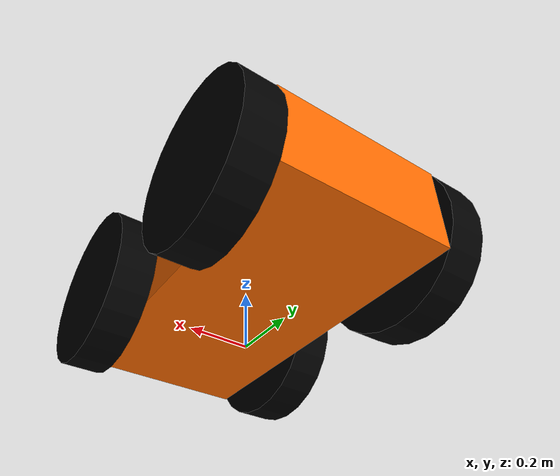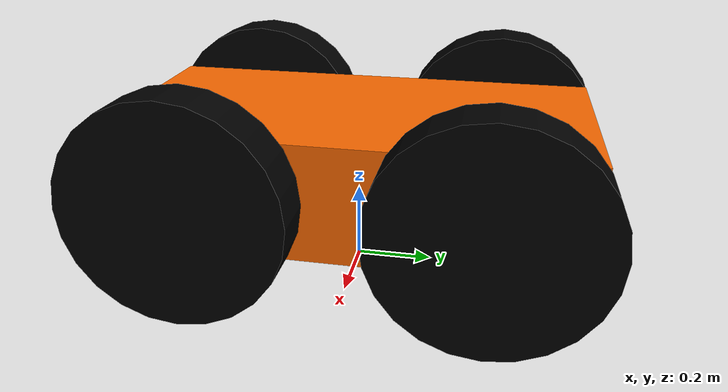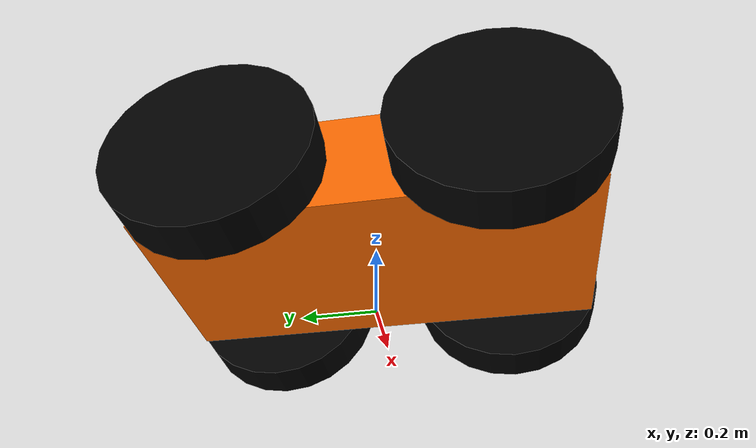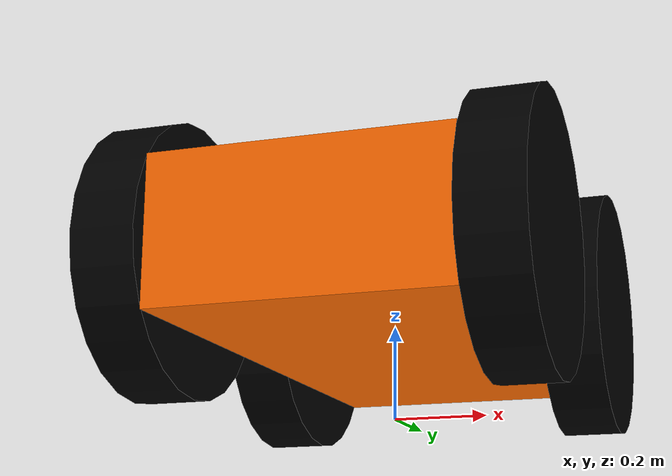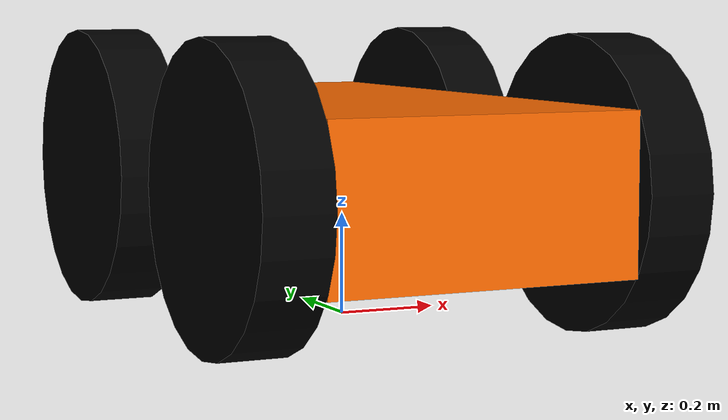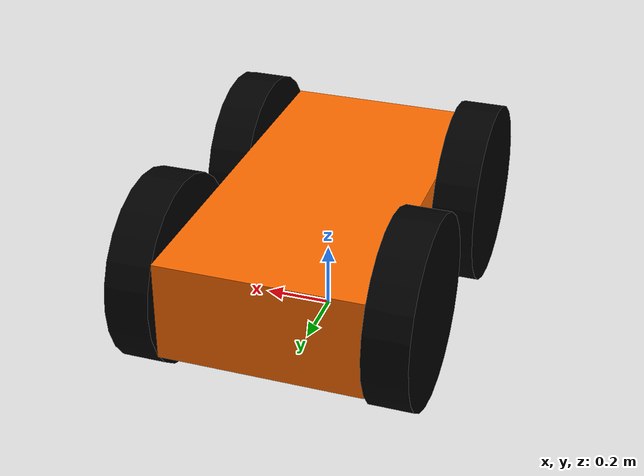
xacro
<?xml version="1.0"?>
<robot name="new_car"
    xmlns:xacro="http://www.ros.org/wiki/xacro">
    <!--定义变量及常数-->
    <xacro:property name="PI" value="3.1415926"/>

    <xacro:property name="car_width" value="0.6"/>
    <xacro:property name="car_length" value="1.2"/>
    <xacro:property name="car_height" value="0.3"/>

    <xacro:property name="wheel_length" value="0.13"/>
    <xacro:property name="wheel_radius" value="0.28"/>

    <xacro:property name="wheel_origin_xyz" value="0.0 0.0 0.0"/>
    <xacro:property name="wheel_origin_rpy" value="0.0 ${PI/2} 0.0"/>

    <!--定义材质-->
    <material name="yellow">
        <color rgba="0.996 0.416 0.0 1.0"/>
    </material>

    <material name="black">
        <color rgba="0.0 0.0 0.0 1.0"/>
    </material>

    <!--宏定义-->

    <xacro:macro name="default_origin" params="xyz rpyaw">
        <origin xyz="${xyz}" rpy="${rpyaw}"/>
    </xacro:macro>
    <xacro:macro name="default_inertial" params="mass">
        <inertial>
            <mass value="${mass}" />
            <inertia ixx="1.0" ixy="0.0" ixz="0.0" iyy="1.0" iyz="0.0" izz="1.0" />
        </inertial>
    </xacro:macro>
    <xacro:macro name="cylinder_geometry" params="length radius">
        <geometry>
            <cylinder length="${length}" radius="${radius}"/>
        </geometry>
    </xacro:macro>
    <xacro:macro name="box_geometry" params="width length height">
        <geometry>
            <box size="${width} ${length} ${height}"/>
        </geometry>
    </xacro:macro>

<!--车身link-->
    <link name="car_link">
        <visual>
            <xacro:box_geometry width="${car_width}" length="${car_length}" height="${car_height}"/>
            <material name="yellow"/>
        </visual>
        <collision>
            <xacro:box_geometry width="${car_width}" length="${car_length}" height="${car_height}"/>
        </collision>
        <xacro:default_inertial mass="3.0"/>

    </link>

    <gazebo reference="car_link">
        <material>Gazebo/SkyBlue</material>
        <mu1>10000</mu1>
        <mu2>10000</mu2>
    </gazebo>

    <xacro:macro name="wheel_car_joint" params="wheel_name front_back left_right">
        <link name="${wheel_name}">
            <visual>
                <xacro:cylinder_geometry length="${wheel_length}" radius="${wheel_radius}"/>
                <xacro:default_origin xyz="${wheel_origin_xyz}" rpyaw="${wheel_origin_rpy}" />
                <material name="black"/>
            </visual>
            <collision>
                <xacro:cylinder_geometry length="${wheel_length}" radius="${wheel_radius}"/>
                <xacro:default_origin xyz="${wheel_origin_xyz}" rpyaw="${wheel_origin_rpy}" />
            </collision>
            <xacro:default_inertial mass="1.0"/>
        </link>

        <joint name="car_base_${wheel_name}" type="continuous">
            <origin xyz="${left_right*(wheel_length+car_width)/2.0} ${front_back*car_length*0.6/2.0} 0.0" rpy="0.0 0.0 0.0"/>
            <!--利用left_right和front_back正负决定位置-->
            <parent link="car_link"/>
            <child link="${wheel_name}"/>
            <axis xyz="1.0 0.0 0.0"/>
        </joint>

        <gazebo reference="${wheel_name}">
            <material>Gazebo/Black</material>
            <mu1>100000</mu1>            <!--静摩擦-->
            <mu2>100000</mu2>            <!--动摩擦-->
        </gazebo>
<!--传动-->
        <transmission name="${wheel_name}_transmission">
            <type>transmission_interface/SimpleTransmission</type>
            <joint name="car_base_${wheel_name}">
                <hardwareInterface>hardware_interface/VelocityJointInterface</hardwareInterface>
            </joint>
            <actuator name="${wheel_name}_motor">
                <mechanicalReducction>1</mechanicalReducction><!--传动比定为1-->
            </actuator>
        </transmission>
    </xacro:macro>

    <xacro:wheel_car_joint wheel_name="front_right_wheel" front_back="1.0" left_right="1.0"/>
    <xacro:wheel_car_joint wheel_name="front_left_wheel" front_back="1.0" left_right="-1.0"/>
    <xacro:wheel_car_joint wheel_name="back_right_wheel" front_back="-1.0" left_right="1.0"/>
    <xacro:wheel_car_joint wheel_name="back_left_wheel" front_back="-1.0" left_right="-1.0"/>

    <link name="base_link"/>
    <joint name="base_link_car" type="fixed">
        <origin xyz="0.0 0.0 ${wheel_radius}" rpy="0.0 0.0 0.0"/>
        <parent link="base_link"/>
        <child link="car_link"/>
    </joint>
<gazebo>
    <plugin name="gazebo_ros_control" filename="libgazebo_ros_control.so">
        <robotNamespace>/</robotNamespace>
    </plugin>
</gazebo>
</robot>
